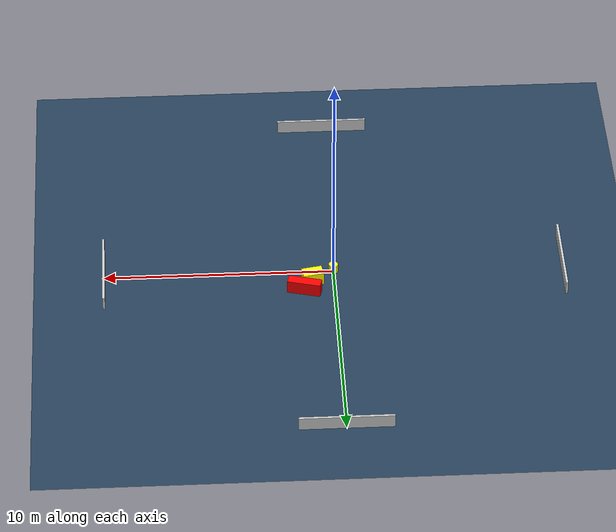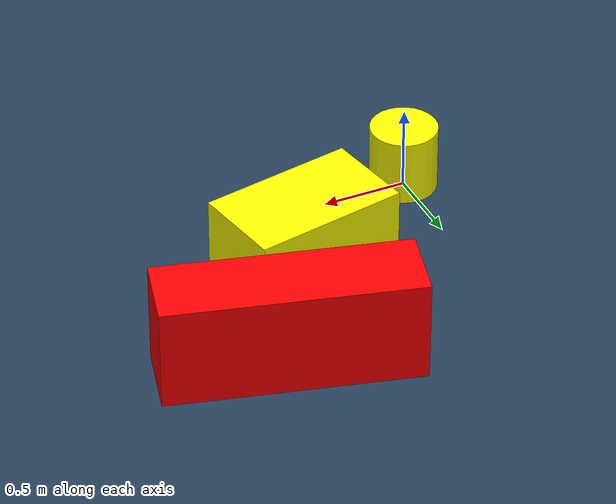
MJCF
<?xml version="1.0" ?>
<mujoco model="generated_environment">
  <option timestep="0.01" integrator="RK4" cone="elliptic"/>
  <default>
    <geom density="1"/>
  </default>
  <asset>
    <texture builtin="gradient" height="3072" name="skybox" rgb1="0.3 0.5 0.7" rgb2="0 0 0" type="skybox" width="512"/>
    <texture builtin="checker" height="300" name="groundplane" rgb1="0.2 0.3 0.4" rgb2="0.1 0.2 0.3" type="2d" width="300"/>
    <material name="groundplane" reflectance="0.2" texrepeat="5 5" texture="groundplane"/>
  </asset>
  <worldbody>
    <light dir="0 0 -1" directional="true" pos="0 0 1.5"/>
    <geom condim="3" friction="0.5 0.005 0.001" material="groundplane" name="floor" pos="0 0 0" size="0 0 0.05" type="plane"/>
    <body name="walls">
      <geom name="wall_1" condim="4" pos="-10.0 0.0 0.3" rgba="0.800000011920929 0.800000011920929 0.800000011920929 1.0" size="0.05 2.0 0.3" type="box"/>
      <geom name="wall_2" condim="4" pos="10.0 0.0 0.3" rgba="0.800000011920929 0.800000011920929 0.800000011920929 1.0" size="0.05 2.0 0.3" type="box"/>
      <geom name="wall_3" condim="4" pos="0.0 -10.0 0.3" rgba="0.800000011920929 0.800000011920929 0.800000011920929 1.0" size="2.0 0.05 0.3" type="box"/>
      <geom name="wall_4" condim="4" pos="0.0 10.0 0.3" rgba="0.800000011920929 0.800000011920929 0.800000011920929 1.0" size="2.0 0.05 0.3" type="box"/>
    </body>
    <body name="robot">
      <joint name="joint_x" type="slide" pos="0 0 0" axis="1 0 0"/>
      <joint name="joint_y" type="slide" pos="0 0 0" axis="0 1 0"/>
      <geom name="robot" type="cylinder" pos="0.0 0.0 0.2" size="0.2 0.2 0.0" mass="5.0" friction="1.0 0.005 0.0001" condim="4" rgba="1.0 1.0 0.0 1.0"/>
    </body>
    <body name="obstacle_1_movable">
      <geom name="obstacle_1_movable" condim="4" pos="0.9399276420985984 0.6547050443514632 0.3" euler="0 0 100.65852039548234" friction="0.0 0.005 0.001" rgba="1.0 1.0 0.0 1.0" size="0.2683962652241849 0.45258973340906206 0.3" type="box" mass="0.1"/>
      <joint type="free"/>
    </body>
    <body name="obstacle_2_static">
      <geom name="obstacle_2_static" condim="4" pos="1.3161867588946499 1.2760731906772294 0.3" euler="0 0 345.3214763886312" friction="0.0 0.005 0.001" rgba="1.0 0.0 0.0 1.0" size="0.726209692176651 0.218178588434565 0.3" type="box"/>
    </body>
  </worldbody>
  <actuator>
    <motor name="actuator_x" joint="joint_x" gear="1" ctrlrange="-1 1"/>
    <motor name="actuator_y" joint="joint_y" gear="1" ctrlrange="-1 1"/>
  </actuator>
</mujoco>
